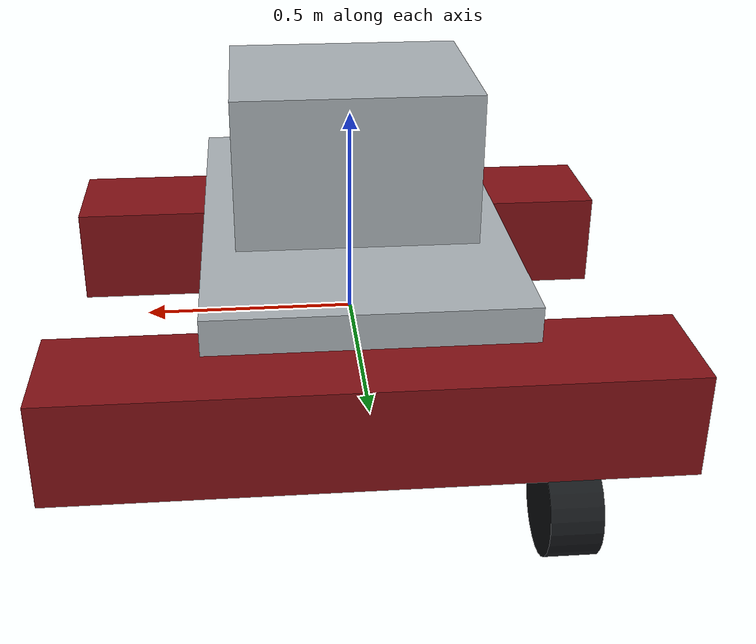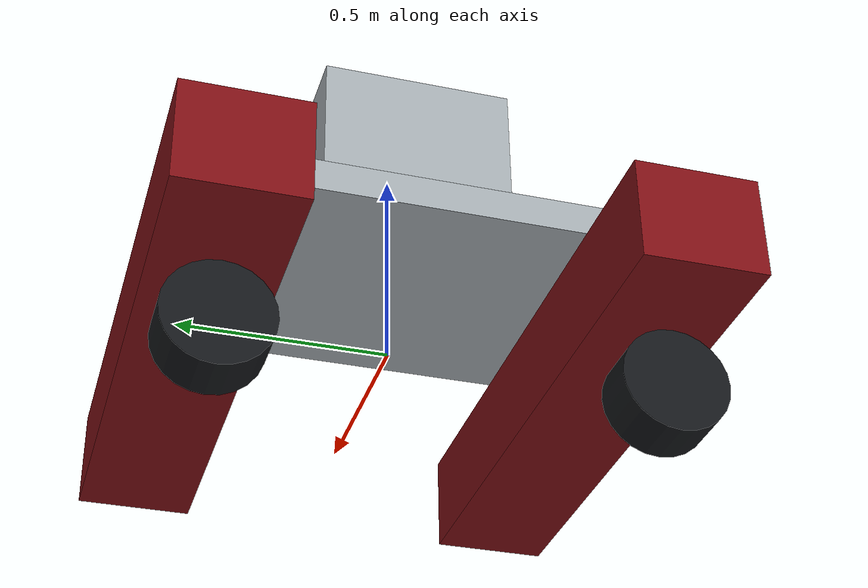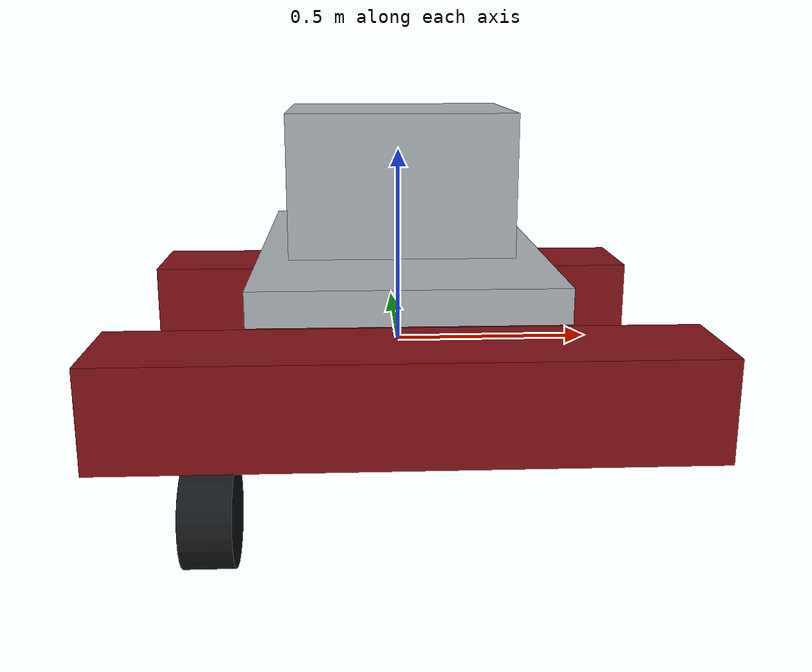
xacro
<?xml version="1.0"?>
<robot xmlns:xacro="http://www.ros.org/wiki/xacro" name="tlu_asv">
  <!--
    ROS body convention: X forward, Y left / port, Z up.
    Starter physical values must be replaced with measured/CAD values.
  -->
  <xacro:arg name="use_mesh" default="false"/>
  <xacro:arg name="mesh_file" default="asv_visual.obj"/>
  <xacro:arg name="mesh_scale" default="0.001"/>
  <xacro:arg name="mesh_x" default="0.0"/>
  <xacro:arg name="mesh_y" default="0.0"/>
  <xacro:arg name="mesh_z" default="0.0"/>
  <xacro:arg name="mesh_roll" default="0.0"/>
  <xacro:arg name="mesh_pitch" default="0.0"/>
  <!-- Fusion model is Y-long; rotate it so its long axis follows ROS X. -->
  <xacro:arg name="mesh_yaw" default="1.57079632679"/>

  <xacro:property name="mass" value="35.0"/>
  <xacro:property name="pontoon_length" value="1.40"/>
  <xacro:property name="pontoon_width" value="0.28"/>
  <xacro:property name="pontoon_height" value="0.24"/>
  <xacro:property name="pontoon_offset_y" value="0.48"/>
  <xacro:property name="thruster_x" value="-0.38"/>
  <xacro:property name="thruster_offset_y" value="0.29"/>
  <xacro:property name="thruster_z" value="-0.22"/>

  <material name="hull_red">
    <color rgba="0.50 0.06 0.08 1.0"/>
  </material>
  <material name="frame_gray">
    <color rgba="0.65 0.68 0.70 1.0"/>
  </material>
  <material name="thruster_dark">
    <color rgba="0.08 0.09 0.10 1.0"/>
  </material>

  <!-- KDL expects the root link to have no inertia. -->
  <link name="base_footprint"/>
  <joint name="base_footprint_joint" type="fixed">
    <parent link="base_footprint"/>
    <child link="base_link"/>
    <origin xyz="0 0 0" rpy="0 0 0"/>
  </joint>

  <link name="base_link">
    <inertial>
      <origin xyz="0 0 -0.1" rpy="0 0 0"/>
      <mass value="${mass}"/>
      <inertia
        ixx="5.0" ixy="0.0" ixz="0.0"
        iyy="8.0" iyz="0.0" izz="12.0"/>
    </inertial>

    <!-- Stable primitive collision volumes; these also drive buoyancy. -->
    <collision name="port_pontoon_collision">
      <origin xyz="0 ${pontoon_offset_y} 0" rpy="0 0 0"/>
      <geometry>
        <box size="${pontoon_length} ${pontoon_width} ${pontoon_height}"/>
      </geometry>
    </collision>
    <collision name="starboard_pontoon_collision">
      <origin xyz="0 -${pontoon_offset_y} 0" rpy="0 0 0"/>
      <geometry>
        <box size="${pontoon_length} ${pontoon_width} ${pontoon_height}"/>
      </geometry>
    </collision>

    <!-- A combined assembly STL exported from Fusion 360. -->
    <xacro:if value="$(arg use_mesh)">
      <visual name="fusion_assembly_visual">
        <origin
          xyz="$(arg mesh_x) $(arg mesh_y) $(arg mesh_z)"
          rpy="$(arg mesh_roll) $(arg mesh_pitch) $(arg mesh_yaw)"/>
        <geometry>
          <mesh
            filename="package://asv_description/meshes/visual/$(arg mesh_file)"
            scale="$(arg mesh_scale) $(arg mesh_scale) $(arg mesh_scale)"/>
        </geometry>
      </visual>
    </xacro:if>

    <!-- Primitive preview lets Gazebo run before the STL is available. -->
    <xacro:unless value="$(arg use_mesh)">
      <visual name="port_pontoon_visual">
        <origin xyz="0 ${pontoon_offset_y} 0" rpy="0 0 0"/>
        <geometry>
          <box size="${pontoon_length} ${pontoon_width} ${pontoon_height}"/>
        </geometry>
        <material name="hull_red"/>
      </visual>
      <visual name="starboard_pontoon_visual">
        <origin xyz="0 -${pontoon_offset_y} 0" rpy="0 0 0"/>
        <geometry>
          <box size="${pontoon_length} ${pontoon_width} ${pontoon_height}"/>
        </geometry>
        <material name="hull_red"/>
      </visual>
      <visual name="cross_beam_visual">
        <origin xyz="0 0 0.22" rpy="0 0 0"/>
        <geometry>
          <box size="0.70 1.10 0.08"/>
        </geometry>
        <material name="frame_gray"/>
      </visual>
      <visual name="electronics_box_visual">
        <origin xyz="0 0 0.43" rpy="0 0 0"/>
        <geometry>
          <box size="0.55 0.45 0.35"/>
        </geometry>
        <material name="frame_gray"/>
      </visual>
      <visual name="port_thruster_visual">
        <origin xyz="-0.45 ${pontoon_offset_y} -0.28" rpy="0 1.57079632679 0"/>
        <geometry>
          <cylinder radius="0.12" length="0.12"/>
        </geometry>
        <material name="thruster_dark"/>
      </visual>
      <visual name="starboard_thruster_visual">
        <origin xyz="-0.45 -${pontoon_offset_y} -0.28" rpy="0 1.57079632679 0"/>
        <geometry>
          <cylinder radius="0.12" length="0.12"/>
        </geometry>
        <material name="thruster_dark"/>
      </visual>
    </xacro:unless>
  </link>

  <link name="imu_link"/>
  <joint name="imu_joint" type="fixed">
    <parent link="base_link"/>
    <child link="imu_link"/>
    <origin xyz="0 0 0.46" rpy="0 0 0"/>
  </joint>

  <link name="gps_link"/>
  <joint name="gps_joint" type="fixed">
    <parent link="base_link"/>
    <child link="gps_link"/>
    <origin xyz="0 0 0.82" rpy="0 0 0"/>
  </joint>

  <link name="lidar_link"/>
  <joint name="lidar_joint" type="fixed">
    <parent link="base_link"/>
    <child link="lidar_link"/>
    <origin xyz="0.35 0 0.52" rpy="0 0 0"/>
  </joint>

  <!-- Mass-light propeller links give Gazebo local X axes for thrust. -->
  <link name="port_thruster_link">
    <inertial>
      <mass value="0.01"/>
      <inertia ixx="0.00001" ixy="0" ixz="0"
               iyy="0.00001" iyz="0" izz="0.00001"/>
    </inertial>
  </link>
  <joint name="port_thruster_joint" type="continuous">
    <parent link="base_link"/>
    <child link="port_thruster_link"/>
    <origin xyz="${thruster_x} ${thruster_offset_y} ${thruster_z}"
            rpy="0 0 0"/>
    <axis xyz="1 0 0"/>
    <limit effort="100" velocity="500"/>
    <dynamics damping="0.01" friction="0.0"/>
  </joint>

  <link name="starboard_thruster_link">
    <inertial>
      <mass value="0.01"/>
      <inertia ixx="0.00001" ixy="0" ixz="0"
               iyy="0.00001" iyz="0" izz="0.00001"/>
    </inertial>
  </link>
  <joint name="starboard_thruster_joint" type="continuous">
    <parent link="base_link"/>
    <child link="starboard_thruster_link"/>
    <origin xyz="${thruster_x} -${thruster_offset_y} ${thruster_z}"
            rpy="0 0 0"/>
    <axis xyz="1 0 0"/>
    <limit effort="100" velocity="500"/>
    <dynamics damping="0.01" friction="0.0"/>
  </joint>

  <gazebo reference="base_link">
    <mu1>0.05</mu1>
    <mu2>0.05</mu2>
  </gazebo>

  <gazebo>
    <plugin filename="gz-sim-thruster-system"
            name="gz::sim::systems::Thruster">
      <namespace>asv</namespace>
      <joint_name>port_thruster_joint</joint_name>
      <use_angvel_cmd>false</use_angvel_cmd>
      <fluid_density>1025</fluid_density>
      <propeller_diameter>0.10</propeller_diameter>
      <thrust_coefficient>0.10</thrust_coefficient>
      <min_thrust_cmd>-15</min_thrust_cmd>
      <max_thrust_cmd>25</max_thrust_cmd>
      <deadband>0.05</deadband>
    </plugin>
    <plugin filename="gz-sim-thruster-system"
            name="gz::sim::systems::Thruster">
      <namespace>asv</namespace>
      <joint_name>starboard_thruster_joint</joint_name>
      <use_angvel_cmd>false</use_angvel_cmd>
      <fluid_density>1025</fluid_density>
      <propeller_diameter>0.10</propeller_diameter>
      <thrust_coefficient>0.10</thrust_coefficient>
      <min_thrust_cmd>-15</min_thrust_cmd>
      <max_thrust_cmd>25</max_thrust_cmd>
      <deadband>0.05</deadband>
    </plugin>
  </gazebo>

  <!-- Damping only; added-mass terms wait for physical calibration. -->
  <gazebo>
    <plugin filename="gz-sim-hydrodynamics-system"
            name="gz::sim::systems::Hydrodynamics">
      <link_name>base_footprint</link_name>
      <xU>-5.0</xU>
      <xUabsU>-8.0</xUabsU>
      <yV>-15.0</yV>
      <yVabsV>-30.0</yVabsV>
      <zW>-20.0</zW>
      <zWabsW>-40.0</zWabsW>
      <kP>-4.0</kP>
      <mQ>-8.0</mQ>
      <nR>-5.0</nR>
      <nRabsR>-8.0</nRabsR>
    </plugin>
  </gazebo>
</robot>
